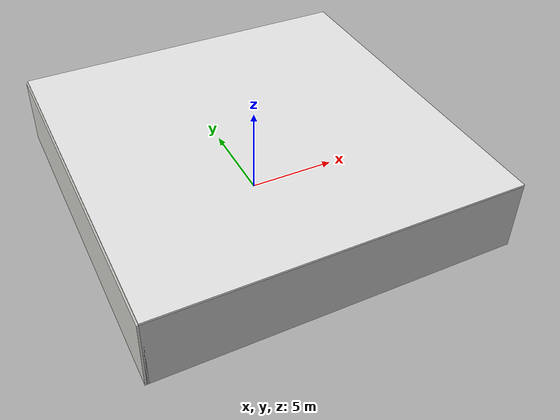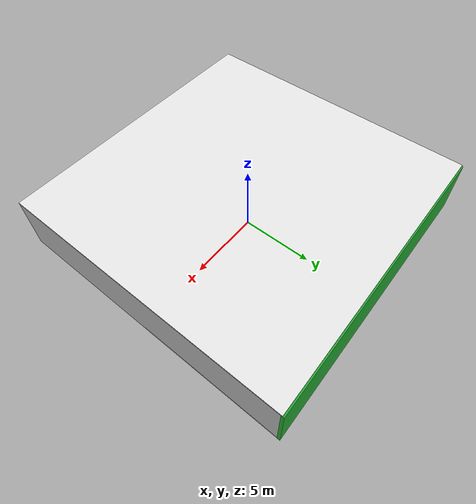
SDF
<sdf version="1.4">
 <world name="default">
  <physics type="ode">
   <max_step_size>0.001</max_step_size>
   <real_time_factor>1</real_time_factor>
   <real_time_update_rate>1000</real_time_update_rate>
   <gravity>0 0 -9.8</gravity>
  </physics>
  <scene><ambient>0.4 0.4 0.4 1</ambient><background>0.7 0.7 0.7 1</background><shadows>1</shadows></scene>
  <model name="Surrounding">
   <static>1</static>
   <link name="Ceiling">
    <collision name="Ceiling_Collision"><geometry><box><size>20 20 0.1</size></box></geometry></collision>
    <visual name="Ceiling_Visual">
     <geometry><box><size>20 20 0.1</size></box></geometry>
     <material>
      <script><uri>file://media/materials/scripts/gazebo.material</uri><name>Gazebo/White</name></script>
     </material>
    </visual>
    <pose>0 0 4.05 0 0 0</pose>
   </link>
   <link name="Wall_South">
    <collision name="Wall_South_Collision">
     <geometry><box><size>20 0 4</size></box></geometry>
     <pose>0 0 2 0 -0 0</pose>
    </collision>
    <visual name="Wall_South_Visual">
     <pose>0 0 2 0 -0 0</pose>
     <geometry><box><size>20 0 4</size></box></geometry>
     <material>
      <script><uri>file://media/materials/scripts/gazebo.material</uri><name>Gazebo/JointAnchor</name></script>
     </material>
    </visual>
    <velocity_decay><linear>0</linear><angular>0</angular></velocity_decay>
    <pose>0 -10 0 0 -0 0</pose>
   </link>
   <link name="Wall_East">
    <collision name="Wall_21_Collision">
     <geometry><box><size>20 0 4</size></box></geometry>
     <pose>0 0 2 0 -0 0</pose>
    </collision>
    <visual name="Wall_21_Visual">
     <pose>0 0 2 0 -0 0</pose>
     <geometry><box><size>20 0 4</size></box></geometry>
     <material>
      <script><uri>file://media/materials/scripts/gazebo.material</uri><name>Gazebo/JointAnchor</name></script>
     </material>
    </visual>
    <velocity_decay><linear>0</linear><angular>0</angular></velocity_decay>
    <pose>10 0 0 0 -0 1.5708</pose>
   </link>
   <link name="Wall_North">
    <collision name="Wall_22_Collision">
     <geometry><box><size>20 0.2 4</size></box></geometry>
     <pose>0 0 2 0 -0 0</pose>
    </collision>
    <visual name="Wall_22_Visual">
     <pose>0 0 2 0 -0 0</pose>
     <geometry><box><size>20 0.2 4</size></box></geometry>
     <material>
      <script><uri>file://media/materials/scripts/gazebo.material</uri><name>Gazebo/GreenGlow</name></script>
     </material>
    </visual>
    <velocity_decay><linear>0</linear><angular>0</angular></velocity_decay>
    <pose>0 10 0 0 -0 0</pose>
   </link>
   <link name="Wall_West">
    <collision name="Wall_23_Collision">
     <geometry><box><size>20 0.2 4</size></box></geometry>
     <pose>0 0 2 0 -0 0</pose>
    </collision>
    <visual name="Wall_23_Visual">
     <pose>0 0 2 0 -0 0</pose>
     <geometry><box><size>20 0.2 4</size></box></geometry>
     <material>
      <script><uri>file://media/materials/scripts/gazebo.material</uri><name>Gazebo/CeilingTiled</name></script>
     </material>
    </visual>
    <velocity_decay><linear>0</linear><angular>0</angular></velocity_decay>
    <pose>-10 0 0 0 0 -1.5708</pose>
   </link>
   <link name="Ground_link">
    <collision name="collision">
     <pose>0 0 .05 0 -0 0</pose>
     <geometry><box><size>20 20 0.1</size></box></geometry>
    </collision>
    <visual name="visual">
     <pose>0 0 .05 0 -0 0</pose>
     <geometry><box><size>20 20 0.1</size></box></geometry>
     <material>
      <script><uri>file://media/materials/scripts/gazebo.material</uri><name>Gazebo/WhiteGlow</name></script>
     </material>
    </visual>
   </link>
   <static>1</static>
  </model>
  <spherical_coordinates>
   <surface_model>EARTH_WGS84</surface_model>
   <latitude_deg>0</latitude_deg>
   <longitude_deg>0</longitude_deg>
   <elevation>0</elevation>
   <heading_deg>0</heading_deg>
  </spherical_coordinates>
  <light name="lightball_0" type="diffuse">
   <diffuse>0.8 0.8 0.8 1</diffuse>
   <specular>0.2 0.2 0.2 1</specular>
   <attenuation>
    <range>100</range>
    <constant>0.7</constant>
    <linear>0.01</linear>
    <quadratic>0.001</quadratic>
   </attenuation>
   <direction>-0.5 0.1 -0.9</direction>
   <pose>7.91729180733 -7.8021681886 2.03779417709 0 0 0</pose>
  </light>
  <light name="lightball_1" type="diffuse">
   <diffuse>0.8 0.8 0.8 1</diffuse>
   <specular>0.2 0.2 0.2 1</specular>
   <attenuation>
    <range>100</range>
    <constant>0.7</constant>
    <linear>0.01</linear>
    <quadratic>0.001</quadratic>
   </attenuation>
   <direction>-0.5 0.1 -0.9</direction>
   <pose>-2.48215091172 -2.37532533113 1.78642901243 0 0 0</pose>
  </light>
  <light name="lightball_2" type="diffuse">
   <diffuse>0.8 0.8 0.8 1</diffuse>
   <specular>0.2 0.2 0.2 1</specular>
   <attenuation>
    <range>100</range>
    <constant>0.7</constant>
    <linear>0.01</linear>
    <quadratic>0.001</quadratic>
   </attenuation>
   <direction>-0.5 0.1 -0.9</direction>
   <pose>1.64195385876 3.52605694223 2.31677951224 0 0 0</pose>
  </light>
  <light name="lightball_3" type="diffuse">
   <diffuse>0.8 0.8 0.8 1</diffuse>
   <specular>0.2 0.2 0.2 1</specular>
   <attenuation>
    <range>100</range>
    <constant>0.7</constant>
    <linear>0.01</linear>
    <quadratic>0.001</quadratic>
   </attenuation>
   <direction>-0.5 0.1 -0.9</direction>
   <pose>2.34684539015 0.223367681744 3.76399230187 0 0 0</pose>
  </light>
  <light name="lightball_4" type="diffuse">
   <diffuse>0.8 0.8 0.8 1</diffuse>
   <specular>0.2 0.2 0.2 1</specular>
   <attenuation>
    <range>100</range>
    <constant>0.7</constant>
    <linear>0.01</linear>
    <quadratic>0.001</quadratic>
   </attenuation>
   <direction>-0.5 0.1 -0.9</direction>
   <pose>2.05624718737 0.289382488966 1.6529954565 0 0 0</pose>
  </light>
  <include><uri>model://cabinet</uri><pose>-7.11719302452 1.22940822811 0 0 0 2.36206883507</pose></include>
  <include><uri>model://cabinet</uri><pose>-4.71637681673 -3.75618309118 0 0 0 0.338075153833</pose></include>
  <include><uri>model://cabinet</uri><pose>-4.3689120653 -1.3772937082 0 0 0 0.505958643555</pose></include>
  <include><uri>model://cabinet</uri><pose>0.980804683344 -2.27122199624 0 0 0 1.49656928786</pose></include>
  <include>
   <uri>model://construction_cone</uri>
   <pose>7.32215741451 4.33152555954 0 0 0 1.0171144981</pose>
  </include>
 </world>
</sdf>

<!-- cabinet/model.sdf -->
<sdf version="1.5">
  <model name="cabinet">
    <static>true</static>
    <link name="cabinet_bottom_plate">
      <inertial>
        <pose>0 0 -1 0 0 0</pose>
        <inertia>
          <ixx>2.050000</ixx>
          <ixy>0</ixy>
          <ixz>0</ixz>
          <iyy>2.050000</iyy>
          <iyz>0</iyz>
          <izz>2.050000</izz>
        </inertia>
        <mass>25.000000</mass>
      </inertial>
      <collision name="cabinet_bottom_plate_geom">
        <pose>0 0 0.010000 0 0 0</pose>
        <geometry>
          <box>
            <size>0.450000 0.450000 0.020000</size>
          </box>
        </geometry>
      </collision>
      <visual name="cabinet_bottom_plate_geom_visual">
        <pose>0 0 0.010000 0 0 0</pose>
        <geometry>
          <box>
            <size>0.450000 0.450000 0.020000</size>
          </box>
        </geometry>
        <material>
          <script>
            <uri>model://media/materials/scripts/gazebo.material</uri>
            <name>Gazebo/Wood</name>
          </script>
        </material>
      </visual>
      <collision name="cabinet_bottom_plate_geom_cabinet_back_plate">
        <pose>0.235000 0 0.510000 0 0 0</pose>
        <geometry>
          <box>
            <size>0.020000 0.450000 1.020000</size>
          </box>
        </geometry>
      </collision>
      <visual name="cabinet_bottom_plate_geom_cabinet_back_plate_visual">
        <pose>0.235000 0 0.510000 0 0 0</pose>
        <geometry>
          <box>
            <size>0.020000 0.450000 1.020000</size>
          </box>
        </geometry>
        <material>
          <script>
            <uri>model://media/materials/scripts/gazebo.material</uri>
            <name>Gazebo/Wood</name>
          </script>
        </material>
      </visual>
      <collision name="cabinet_bottom_plate_geom_cabinet_left_plate">
        <pose>0 0.235000 0.510000 0 0 0</pose>
        <geometry>
          <box>
            <size>0.450000 0.020000 1.020000</size>
          </box>
        </geometry>
      </collision>
      <visual name="cabinet_bottom_plate_geom_cabinet_left_plate_visual">
        <pose>0 0.235000 0.510000 0 0 0</pose>
        <geometry>
          <box>
            <size>0.450000 0.020000 1.020000</size>
          </box>
        </geometry>
        <material>
          <script>
            <uri>model://media/materials/scripts/gazebo.material</uri>
            <name>Gazebo/Wood</name>
          </script>
        </material>
      </visual>
      <collision name="cabinet_bottom_plate_geom_cabinet_middle_plate">
        <pose>0 0 0.510000 0 0 0</pose>
        <geometry>
          <box>
            <size>0.450000 0.450000 0.020000</size>
          </box>
        </geometry>
      </collision>
      <visual name="cabinet_bottom_plate_geom_cabinet_middle_plate_visual">
        <pose>0 0 0.510000 0 0 0</pose>
        <geometry>
          <box>
            <size>0.450000 0.450000 0.020000</size>
          </box>
        </geometry>
        <material>
          <script>
            <uri>model://media/materials/scripts/gazebo.material</uri>
            <name>Gazebo/Wood</name>
          </script>
        </material>
      </visual>
      <collision name="cabinet_bottom_plate_geom_cabinet_right_plate">
        <pose>0 -0.235000 0.510000 0 0 0</pose>
        <geometry>
          <box>
            <size>0.450000 0.020000 1.020000</size>
          </box>
        </geometry>
      </collision>
      <visual name="cabinet_bottom_plate_geom_cabinet_right_plate_visual">
        <pose>0 -0.235000 0.510000 0 0 0</pose>
        <geometry>
          <box>
            <size>0.450000 0.020000 1.020000</size>
          </box>
        </geometry>
        <material>
          <script>
            <uri>model://media/materials/scripts/gazebo.material</uri>
            <name>Gazebo/Wood</name>
          </script>
        </material>
      </visual>
      <collision name="cabinet_bottom_plate_geom_cabinet_top_plate">
        <pose>0 0 1.010000 0 0 0</pose>
        <geometry>
          <box>
            <size>0.450000 0.450000 0.020000</size>
          </box>
        </geometry>
      </collision>
      <visual name="cabinet_bottom_plate_geom_cabinet_top_plate_visual">
        <pose>0 0 1.010000 0 0 0</pose>
        <geometry>
          <box>
            <size>0.450000 0.450000 0.020000</size>
          </box>
        </geometry>
        <material>
          <script>
            <uri>model://media/materials/scripts/gazebo.material</uri>
            <name>Gazebo/Wood</name>
          </script>
        </material>
      </visual>
    </link>
  </model>
</sdf>

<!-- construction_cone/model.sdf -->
<sdf version="1.5">
  <model name="Construction Cone">
    <link name="link">
      <collision name="collision">
        <geometry>
          <mesh>
            <scale>10 10 10</scale>
            <uri>file://isr-testbed/construction_cone/meshes/construction_cone.dae</uri>
          </mesh>
        </geometry>
      </collision>
      <visual name="visual">
        <geometry>
          <mesh>
            <scale>10 10 10</scale>
            <uri>file://isr-testbed/construction_cone/meshes/construction_cone.dae</uri>
          </mesh>
        </geometry>
      </visual>
    </link>
  </model>
</sdf>
